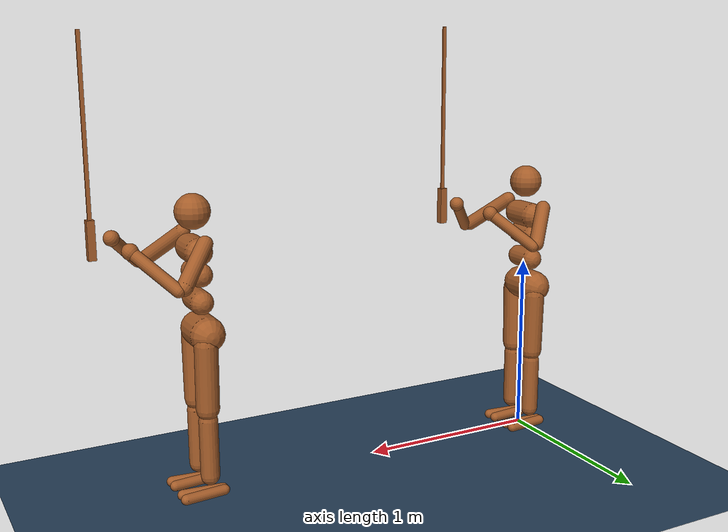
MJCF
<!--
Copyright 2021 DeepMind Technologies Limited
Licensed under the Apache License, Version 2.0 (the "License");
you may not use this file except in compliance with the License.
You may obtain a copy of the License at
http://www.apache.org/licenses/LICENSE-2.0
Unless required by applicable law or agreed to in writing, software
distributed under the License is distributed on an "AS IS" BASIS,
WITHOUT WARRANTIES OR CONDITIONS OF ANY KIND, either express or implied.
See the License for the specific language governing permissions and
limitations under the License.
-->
<mujoco model="Humanoid">
  <option timestep="0.005"/>

  <visual>
    <map force="0.1" zfar="30"/>
    <rgba haze="0.15 0.25 0.35 1"/>
    <global offwidth="2560" offheight="1440" elevation="-20" azimuth="120"/>
  </visual>

  <statistic center="0 0 0.7"/>

  <asset>
    <texture type="skybox" builtin="gradient" rgb1=".3 .5 .7" rgb2="0 0 0" width="32" height="512"/>
    <texture name="body" type="cube" builtin="flat" mark="cross" width="128" height="128" rgb1="0.8 0.6 0.4" rgb2="0.8 0.6 0.4" markrgb="1 1 1" random="0.01"/>
    <material name="body" texture="body" texuniform="true" rgba="0.8 0.6 .4 1"/>
    <texture name="grid" type="2d" builtin="checker" width="512" height="512" rgb1=".1 .2 .3" rgb2=".2 .3 .4"/>
    <material name="grid" texture="grid" texrepeat="1 1" texuniform="true" reflectance=".2"/>
  </asset>

  <default>
    <motor ctrlrange="-1 1" ctrllimited="true"/>
    <default class="body">

      <!-- geoms -->
      <geom type="capsule" condim="1" friction=".7" solimp=".9 .99 .003" solref=".015 1" material="body"/>
      <default class="thigh">
        <geom size=".06"/>
      </default>
      <default class="shin">
        <geom fromto="0 0 0 0 0 -.3"  size=".049"/>
      </default>
      <default class="foot">
        <geom size=".027"/>
        <default class="foot1">
          <geom fromto="-.07 -.01 0 .14 -.03 0"/>
        </default>
        <default class="foot2">
          <geom fromto="-.07 .01 0 .14  .03 0"/>
        </default>
      </default>
      <default class="arm_upper">
        <geom size=".04"/>
      </default>
      <default class="arm_lower">
        <geom size=".031"/>
      </default>
      <default class="hand">
        <geom type="sphere" size=".04"/>
      </default>

      <!-- joints -->
      <joint type="hinge" damping=".2" stiffness="1" armature=".01" limited="true" solimplimit="0 .99 .01"/>
      <default class="joint_big">
        <joint damping="5" stiffness="10"/>
        <default class="hip_x">
          <joint range="-30 10"/>
        </default>
        <default class="hip_z">
          <joint range="-60 35"/>
        </default>
        <default class="hip_y">
          <joint axis="0 1 0" range="-150 20"/>
        </default>
        <default class="joint_big_stiff">
          <joint stiffness="20"/>
        </default>
      </default>
      <default class="knee">
        <joint pos="0 0 .02" axis="0 -1 0" range="-160 2"/>
      </default>
      <default class="ankle">
        <joint range="-50 50"/>
        <default class="ankle_y">
          <joint pos="0 0 .08" axis="0 1 0" stiffness="6"/>
        </default>
        <default class="ankle_x">
          <joint pos="0 0 .04" stiffness="3"/>
        </default>
      </default>
      <default class="shoulder">
        <joint range="-85 60"/>
      </default>
      <default class="elbow">
        <joint range="-100 50" stiffness="0"/>
      </default>
    </default>
  </default>

  <worldbody>
    <geom name="floor" size="0 0 .05" type="plane" material="grid" condim="3"/>
    <light name="spotlight" mode="targetbodycom" target="torso" diffuse=".8 .8 .8" specular="0.3 0.3 0.3" pos="0 -6 4" cutoff="30"/>
    <body name="torso" pos="0 0 1.282" childclass="body">
      <light name="top" pos="0 0 2" mode="trackcom"/>
      <camera name="back" pos="-3 0 1" xyaxes="0 -1 0 1 0 2" mode="trackcom"/>
      <camera name="side" pos="0 -3 1" xyaxes="1 0 0 0 1 2" mode="trackcom"/>
      <freejoint name="root"/>
      <geom name="torso" fromto="0 -.07 0 0 .07 0" size=".07"/>
      <geom name="waist_upper" fromto="-.01 -.06 -.12 -.01 .06 -.12" size=".06"/>
      <body name="head" pos="0 0 .19">
        <geom name="head" type="sphere" size=".09"/>
        <camera name="egocentric" pos=".09 0 0" xyaxes="0 -1 0 .1 0 1" fovy="80"/>
      </body>
      <body name="waist_lower" pos="-.01 0 -.26">
        <geom name="waist_lower" fromto="0 -.06 0 0 .06 0" size=".06"/>
        <joint name="abdomen_z" pos="0 0 .065" axis="0 0 1" range="-45 45" class="joint_big_stiff"/>
        <joint name="abdomen_y" pos="0 0 .065" axis="0 1 0" range="-75 30" class="joint_big"/>
        <body name="pelvis" pos="0 0 -.165">
          <joint name="abdomen_x" pos="0 0 .1" axis="1 0 0" range="-35 35" class="joint_big"/>
          <geom name="butt" fromto="-.02 -.07 0 -.02 .07 0" size=".09"/>
          <body name="thigh_right" pos="0 -.1 -.04">
            <joint name="hip_x_right" axis="1 0 0" class="hip_x"/>
            <joint name="hip_z_right" axis="0 0 1" class="hip_z"/>
            <joint name="hip_y_right" class="hip_y"/>
            <geom name="thigh_right" fromto="0 0 0 0 .01 -.34" class="thigh"/>
            <body name="shin_right" pos="0 .01 -.4">
              <joint name="knee_right" class="knee"/>
              <geom name="shin_right" class="shin"/>
              <body name="foot_right" pos="0 0 -.39">
                <joint name="ankle_y_right" class="ankle_y"/>
                <joint name="ankle_x_right" class="ankle_x" axis="1 0 .5"/>
                <geom name="foot1_right" class="foot1"/>
                <geom name="foot2_right" class="foot2"/>
              </body>
            </body>
          </body>
          <body name="thigh_left" pos="0 .1 -.04">
            <joint name="hip_x_left" axis="-1 0 0" class="hip_x"/>
            <joint name="hip_z_left" axis="0 0 -1" class="hip_z"/>
            <joint name="hip_y_left" class="hip_y"/>
            <geom name="thigh_left" fromto="0 0 0 0 -.01 -.34" class="thigh"/>
            <body name="shin_left" pos="0 -.01 -.4">
              <joint name="knee_left" class="knee"/>
              <geom name="shin_left" fromto="0 0 0 0 0 -.3" class="shin"/>
              <body name="foot_left" pos="0 0 -.39">
                <joint name="ankle_y_left" class="ankle_y"/>
                <joint name="ankle_x_left" class="ankle_x" axis="-1 0 -.5"/>
                <geom name="foot1_left" class="foot1"/>
                <geom name="foot2_left" class="foot2"/>
              </body>
            </body>
          </body>
        </body>
      </body>
      <body name="upper_arm_right" pos="0 -.17 .06">
        <joint name="shoulder1_right" axis="2 1 1"  class="shoulder"/>
        <joint name="shoulder2_right" axis="0 -1 1" class="shoulder"/>
        <geom name="upper_arm_right" fromto="0 0 0 .16 -.16 -.16" class="arm_upper"/>
        <body name="lower_arm_right" pos=".18 -.18 -.18">
          <joint name="elbow_right" axis="0 -1 1" class="elbow"/>
          <geom name="lower_arm_right" fromto=".01 .01 .01 .17 .17 .17" class="arm_lower"/>
          <body name="hand_right" pos=".18 .18 .18">
            <geom name="hand_right" zaxis="1 1 1" class="hand"/>
            <body name="sword" pos="0.1 0 0.5"> <!-- Adjust position as needed -->
                <geom name="sword_blade" type="box" size="0.01 0.005 0.5" /> <!-- Adjust size and shape as needed -->
                <geom name="sword_handle" type="box" size="0.02 0.02 0.1"  pos="0 0 -0.5"/> <!-- Handle, adjust position relative to blade -->
            </body>
          </body>
        </body>
      </body>
      <body name="upper_arm_left" pos="0 .17 .06">
        <joint name="shoulder1_left" axis="-2 1 -1" class="shoulder"/>
        <joint name="shoulder2_left" axis="0 -1 -1"  class="shoulder"/>
        <geom name="upper_arm_left" fromto="0 0 0 .16 .16 -.16" class="arm_upper"/>
        <body name="lower_arm_left" pos=".18 .18 -.18">
          <joint name="elbow_left" axis="0 -1 -1" class="elbow"/>
          <geom name="lower_arm_left" fromto=".01 -.01 .01 .17 -.17 .17" class="arm_lower"/>
          <body name="hand_left" pos=".18 -.18 .18">
            <geom name="hand_left" zaxis="1 -1 1" class="hand"/>
          </body>
        </body>
      </body>
    </body>
    <body name="torso2" pos="2 0 1.282" childclass="body">
      <light name="top2" pos="0 0 2" mode="trackcom"/>
      <camera name="back2" pos="-3 0 1" xyaxes="0 -1 0 1 0 2" mode="trackcom"/>
      <camera name="side2" pos="0 -3 1" xyaxes="1 0 0 0 1 2" mode="trackcom"/>
      <freejoint name="root2"/>
      <geom name="torso2" fromto="0 -.07 0 0 .07 0" size=".07"/>
      <geom name="waist_upper2" fromto="-.01 -.06 -.12 -.01 .06 -.12" size=".06"/>
      <body name="head2" pos="0 0 .19">
        <geom name="head2" type="sphere" size=".09"/>
        <camera name="egocentric2" pos=".09 0 0" xyaxes="0 -1 0 .1 0 1" fovy="80"/>
      </body>
      <body name="waist_lower-2" pos="-.01 0 -.26">
        <geom name="waist_lower-2" fromto="0 -.06 0 0 .06 0" size=".06"/>
        <joint name="abdomen_z-2" pos="0 0 .065" axis="0 0 1" range="-45 45" class="joint_big_stiff"/>
        <joint name="abdomen_y-2" pos="0 0 .065" axis="0 1 0" range="-75 30" class="joint_big"/>
        <body name="pelvis-2" pos="0 0 -.165">
          <joint name="abdomen_x-2" pos="0 0 .1" axis="1 0 0" range="-35 35" class="joint_big"/>
          <geom name="butt2" fromto="-.02 -.07 0 -.02 .07 0" size=".09"/>
          <body name="thigh_right2" pos="0 -.1 -.04">
            <joint name="hip_x_right2" axis="1 0 0" class="hip_x"/>
            <joint name="hip_z_right2" axis="0 0 1" class="hip_z"/>
            <joint name="hip_y_right2" class="hip_y"/>
            <geom name="thigh_right2" fromto="0 0 0 0 .01 -.34" class="thigh"/>
            <body name="shin_right2" pos="0 .01 -.4">
              <joint name="knee_right2" class="knee"/>
              <geom name="shin_right2" class="shin"/>
              <body name="foot_right-2" pos="0 0 -.39">
                <joint name="ankle_y_right2" class="ankle_y"/>
                <joint name="ankle_x_right2" class="ankle_x" axis="1 0 .5"/>
                <geom name="foot1_right2" class="foot1"/>
                <geom name="foot2_right2" class="foot2"/>
              </body>
            </body>
          </body>
          <body name="thigh_left_2" pos="0 .1 -.04">
            <joint name="hip_x_left_2" axis="-1 0 0" class="hip_x"/>
            <joint name="hip_z_left_2" axis="0 0 -1" class="hip_z"/>
            <joint name="hip_y_left_2" class="hip_y"/>
            <geom name="thigh_left_2" fromto="0 0 0 0 -.01 -.34" class="thigh"/>
            <body name="shin_left_2" pos="0 -.01 -.4">
              <joint name="knee_left_2" class="knee"/>
              <geom name="shin_left_2" fromto="0 0 0 0 0 -.3" class="shin"/>
              <body name="foot_left_2" pos="0 0 -.39">
                <joint name="ankle_y_left_2" class="ankle_y"/>
                <joint name="ankle_x_left-2" class="ankle_x" axis="-1 0 -.5"/>
                <geom name="foot1_left-2" class="foot1"/>
                <geom name="foot2_left-2" class="foot2"/>
              </body>
            </body>
          </body>
        </body>
      </body>
      <body name="upper_arm_right2" pos="0 -.17 .06">
        <joint name="shoulder1_right2" axis="2 1 1"  class="shoulder"/>
        <joint name="shoulder2_right2" axis="0 -1 1" class="shoulder"/>
        <geom name="upper_arm_right2" fromto="0 0 0 .16 -.16 -.16" class="arm_upper"/>
        <body name="lower_arm_right2" pos=".18 -.18 -.18">
          <joint name="elbow_right2" axis="0 -1 1" class="elbow"/>
          <geom name="lower_arm_right2" fromto=".01 .01 .01 .17 .17 .17" class="arm_lower"/>
          <body name="hand_right-2" pos=".18 .18 .18">
            <geom name="hand_right-2" zaxis="1 1 1" class="hand"/>
            <body name="sword2" pos="0.1 0 0.5"> <!-- Adjust position as needed -->
                <geom name="sword_blade2" type="box" size="0.01 0.005 0.5" /> <!-- Adjust size and shape as needed -->
                <geom name="sword_handle2" type="box" size="0.02 0.02 0.1"  pos="0 0 -0.5"/> <!-- Handle, adjust position relative to blade -->
            </body>
          </body>
        </body>
      </body>
      <body name="upper_arm_left2" pos="0 .17 .06">
        <joint name="shoulder1_left2" axis="-2 1 -1" class="shoulder"/>
        <joint name="shoulder2_left2" axis="0 -1 -1"  class="shoulder"/>
        <geom name="upper_arm_left2" fromto="0 0 0 .16 .16 -.16" class="arm_upper"/>
        <body name="lower_arm_left2" pos=".18 .18 -.18">
          <joint name="elbow_left2" axis="0 -1 -1" class="elbow"/>
          <geom name="lower_arm_left2" fromto=".01 -.01 .01 .17 -.17 .17" class="arm_lower"/>
          <body name="hand_left-2" pos=".18 -.18 .18">
            <geom name="hand_left-2" zaxis="1 -1 1" class="hand"/>
          </body>
        </body>
      </body>
    </body>
  </worldbody>

  <contact>
    <exclude body1="waist_lower" body2="thigh_right"/>
    <exclude body1="waist_lower" body2="thigh_left"/>
  </contact>

  <tendon>
    <fixed name="hamstring_right" limited="true" range="-0.3 2">
      <joint joint="hip_y_right" coef=".5"/>
      <joint joint="knee_right" coef="-.5"/>
    </fixed>
    <fixed name="hamstring_left" limited="true" range="-0.3 2">
      <joint joint="hip_y_left" coef=".5"/>
      <joint joint="knee_left" coef="-.5"/>
    </fixed>
  </tendon>

  <actuator>
    <motor name="abdomen_y"       gear="40"  joint="abdomen_y"/>
    <motor name="abdomen_z"       gear="40"  joint="abdomen_z"/>
    <motor name="abdomen_x"       gear="40"  joint="abdomen_x"/>
    <motor name="hip_x_right"     gear="40"  joint="hip_x_right"/>
    <motor name="hip_z_right"     gear="40"  joint="hip_z_right"/>
    <motor name="hip_y_right"     gear="120" joint="hip_y_right"/>
    <motor name="knee_right"      gear="80"  joint="knee_right"/>
    <motor name="ankle_x_right"   gear="20"  joint="ankle_x_right"/>
    <motor name="ankle_y_right"   gear="20"  joint="ankle_y_right"/>
    <motor name="hip_x_left"      gear="40"  joint="hip_x_left"/>
    <motor name="hip_z_left"      gear="40"  joint="hip_z_left"/>
    <motor name="hip_y_left"      gear="120" joint="hip_y_left"/>
    <motor name="knee_left"       gear="80"  joint="knee_left"/>
    <motor name="ankle_x_left"    gear="20"  joint="ankle_x_left"/>
    <motor name="ankle_y_left"    gear="20"  joint="ankle_y_left"/>
    <motor name="shoulder1_right" gear="20"  joint="shoulder1_right"/>
    <motor name="shoulder2_right" gear="20"  joint="shoulder2_right"/>
    <motor name="elbow_right"     gear="40"  joint="elbow_right"/>
    <motor name="shoulder1_left"  gear="20"  joint="shoulder1_left"/>
    <motor name="shoulder2_left"  gear="20"  joint="shoulder2_left"/>
    <motor name="elbow_left"      gear="40"  joint="elbow_left"/>
  </actuator>

  <keyframe>
    <!--
    The values below are split into rows for readibility:
      torso position
      torso orientation
      spinal
      right leg
      left leg
      arms
    -->
    <key name="squat" qpos="0 0 0.596 0.988015 0 0.154359 0 0 0.4 0 -0.25 -0.5 -2.5 -2.65 -0.8 0.56 -0.25 -0.5 -2.5 -2.65 -0.8 0.56 0 0 0 0 0 0
                        0 2 0.596 0.988015 0 0.154359 0 0 0.4 0 -0.25 -0.5 -2.5 -2.65 -0.8 0.56 -0.25 -0.5 -2.5 -2.65 -0.8 0.56 0 0 0 0 0 0"/>
  <key name="stand_on_left_leg" qpos="0 0 1.21948 0.971588 -0.179973 0.135318 -0.0729076 -0.0516 -0.202 0.23 -0.24 -0.007 -0.34 -1.76 -0.466 -0.0415 -0.08 -0.01 -0.37 -0.685 -0.35 -0.09 0.109 -0.067 -0.7 -0.05 0.12 0.16
                                          0 2 1.21948 0.971588 -0.179973 0.135318 -0.0729076 -0.0516 -0.202 0.23 -0.24 -0.007 -0.34 -1.76 -0.466 -0.0415 -0.08 -0.01 -0.37 -0.685 -0.35 -0.09 0.109 -0.067 -0.7 -0.05 0.12 0.16"/>
  </keyframe>
</mujoco>
